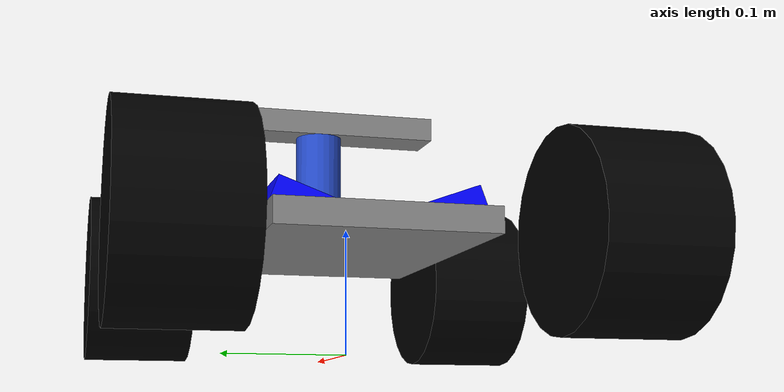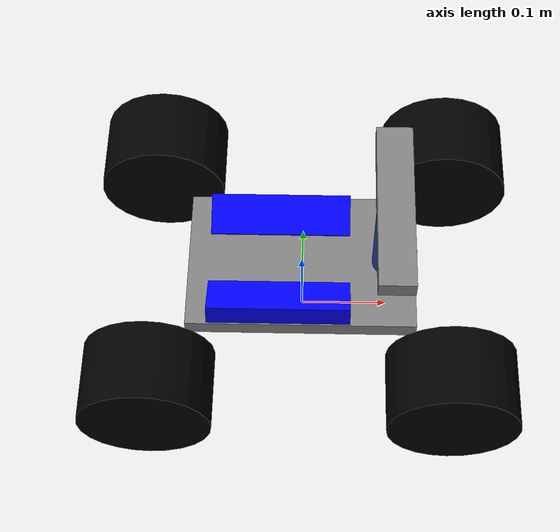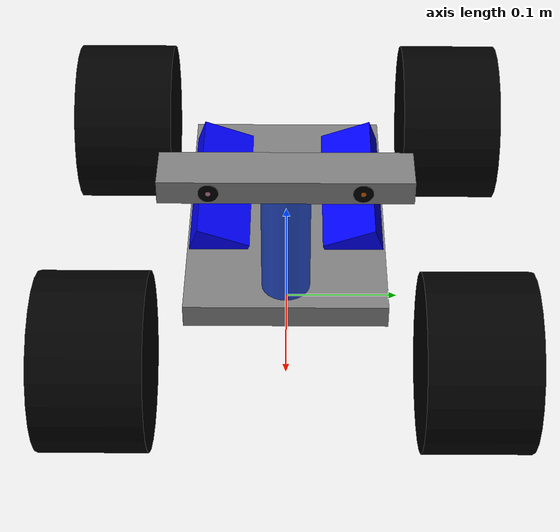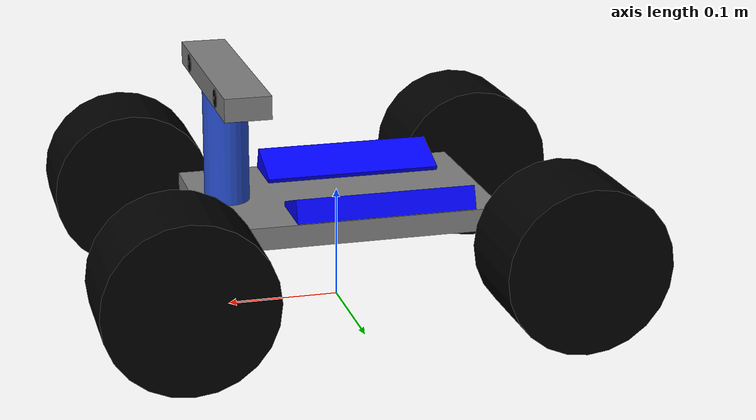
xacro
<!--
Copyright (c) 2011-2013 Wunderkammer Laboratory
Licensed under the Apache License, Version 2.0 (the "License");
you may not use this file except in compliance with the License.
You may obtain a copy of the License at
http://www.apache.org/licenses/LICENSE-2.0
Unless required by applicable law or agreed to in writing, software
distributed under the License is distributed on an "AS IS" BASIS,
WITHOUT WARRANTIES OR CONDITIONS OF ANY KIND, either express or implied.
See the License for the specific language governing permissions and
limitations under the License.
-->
<?xml version="1.0"?>

<robot name="em_3905" xmlns:xacro="http://www.ros.org/wiki/xacro">

  <!-- includes -->
  <xacro:include filename="$(find ackermann_vehicle_description)/urdf/stereo_camera.urdf.xacro" />

  <!-- Degree-to-radian conversions -->
  <xacro:property name="degrees_45" value="0.785398163"/>
  <xacro:property name="degrees_90" value="1.57079633"/>

  <!-- chassis_length is measured along the x axis, chassis_width
       along the y axis, and chassis_height along the z axis. -->
  <xacro:property name="chassis_length" value="0.258"/>
  <xacro:property name="chassis_width" value="0.168"/>
  <xacro:property name="chassis_height" value="0.02"/>
  <xacro:property name="chassis_mass" value="2.788"/>

  <xacro:property name="battery_x_offset" value="0.055"/>
  <xacro:property name="battery_dist" value="0.065"/>
  <xacro:property name="battery_comp_depth" value="0.02"/>
  <xacro:property name="battery_comp_angle" value="0.34906585"/>
  <xacro:property name="battery_length" value="0.16"/>
  <xacro:property name="battery_width" value="0.047"/>
  <xacro:property name="battery_height" value="0.024"/>
  <xacro:property name="battery_mass" value="0.5025"/>

  <xacro:property name="hub_dia" value="0.09652"/>
  <xacro:property name="tire_dia" value="0.14605"/>
  <xacro:property name="tire_width" value="0.0889"/>
  <xacro:property name="hex_hub_depth" value="0.01445"/>
  <xacro:property name="wheel_mass" value="0.29"/>

  <xacro:property name="wheelbase" value="0.335"/>
  <xacro:property name="hex_hub_dist" value="0.365"/>
  <xacro:property name="axle_length" value="0.03"/>
  <xacro:property name="wheel_travel" value="0.084"/>
  <xacro:property name="shock_z_offset" value="0.0655"/>

  <xacro:property name="shock_eff_limit" value="12.5106"/>
  <xacro:property name="shock_vel_limit" value="1000"/>

  <xacro:property name="axle_eff_limit" value="5.12766"/>
  <xacro:property name="axle_vel_limit" value="244.8696"/>

  <!-- These constants are used to simulate a Traxxas 2056 servo operated at
       6 V. servo_stall_torque is measured in N m. servo_no_load_speed is
       measured in rad/s. -->
  <xacro:property name="servo_stall_torque" value="0.5649"/>
  <xacro:property name="servo_no_load_speed" value="4.553"/>

  <!-- ctrl_period is gazebo_ros_control's control period. Unit: hertz. -->
  <xacro:property name="ctrl_period" value="0.01"/>

  <material name="battery_mat">
    <color rgba="0 0 1 1"/>
  </material>
  <material name="chassis_mat">
    <color rgba="0.5 0.5 0.5 1"/>
  </material>
  <material name="tire_mat">
    <color rgba="0 0 0 1"/>
  </material>

  <!-- Null inertial element. This is needed to make the model work with
       Gazebo. -->
  <xacro:macro name="null_inertial">
    <inertial>
      <mass value="0.001"/>
      <inertia ixx="0.001" ixy="0" ixz="0" iyy="0.001" iyz="0" izz="0.001"/>
    </inertial>
  </xacro:macro>

  <!-- Inertia of a solid cuboid. Width is measured along the x axis, depth
       along the y axis, and height along the z axis. -->
  <xacro:macro name="solid_cuboid_inertial"
               params="width depth height mass *origin">
    <inertial>
      <xacro:insert_block name="origin"/>
      <mass value="${mass}"/>
      <inertia ixx="${mass * (depth * depth + height * height) / 12}"
               ixy="0" ixz="0"
               iyy="${mass * (width * width + height * height) / 12}"
               iyz="0"
               izz="${mass * (width * width + depth * depth) / 12}"/>
    </inertial>
  </xacro:macro>

  <xacro:macro name="thick_walled_tube_inertial"
               params="inner_rad outer_rad height mass">
    <inertial>
      <mass value="${mass}"/>
      <inertia ixx="${(1 / 12) * mass * (3 * (inner_rad * inner_rad +
                    outer_rad * outer_rad) + height * height)}"
               ixy="0" ixz="0"
               iyy="${(1 / 12) * mass * (3 * (inner_rad * inner_rad +
                    outer_rad * outer_rad) + height * height)}"
               iyz="0"
               izz="${mass * (inner_rad * inner_rad +
                    outer_rad * outer_rad) / 2}"/>
    </inertial>
  </xacro:macro>

  <!-- Battery -->
  <xacro:macro name="battery" params="prefix reflect">
    <joint name="chassis_to_${prefix}_battery" type="fixed">
      <parent link="chassis"/>
      <child link="${prefix}_battery_offset"/>
      <origin xyz="${battery_x_offset - battery_length / 2}
                   ${reflect * battery_dist / 2}
                   0"
              rpy="${reflect * battery_comp_angle} 0 0"/>
    </joint>

    <link name="${prefix}_battery_offset">
      <xacro:null_inertial/>
    </link>

    <joint name="offset_to_${prefix}_battery" type="fixed">
      <parent link="${prefix}_battery_offset"/>
      <child link="${prefix}_battery"/>
      <origin xyz="0
                   ${reflect * battery_width / 2}
                   ${(battery_height / 2) - battery_comp_depth}"/>
    </joint>

    <link name="${prefix}_battery">
      <visual>
        <geometry>
          <box size="${battery_length} ${battery_width} ${battery_height}"/>
        </geometry>
        <material name="battery_mat"/>
      </visual>

      <collision>
        <geometry>
          <box size="${battery_length} ${battery_width} ${battery_height}"/>
        </geometry>
      </collision>

      <xacro:solid_cuboid_inertial
         width="${battery_length}" depth="${battery_width}"
         height="${battery_height}" mass="${battery_mass}">
        <origin/>
      </xacro:solid_cuboid_inertial>
    </link>

    <gazebo reference="${prefix}_battery">
      <material>Gazebo/Blue</material>
    </gazebo>
  </xacro:macro>

  <!-- Shock absorber -->
  <xacro:macro name="shock"
               params="lr_prefix fr_prefix lr_reflect fr_reflect child">
    <joint name="${lr_prefix}_${fr_prefix}_shock" type="prismatic">
      <parent link="chassis"/>
      <child link="${child}"/>

      <origin xyz="${fr_reflect * wheelbase / 2}
                   ${lr_reflect * ((hex_hub_dist / 2) - axle_length)}
                   ${(wheel_travel / 2) - shock_z_offset}"/>
      <axis xyz="0 0 -1"/>
      <limit lower="${-wheel_travel / 2}" upper="${wheel_travel / 2}"
             effort="${shock_eff_limit}" velocity="${shock_vel_limit}"/>
    </joint>
    <transmission name="${lr_prefix}_${fr_prefix}_shock_trans">
      <type>transmission_interface/SimpleTransmission</type>
      <joint name="${lr_prefix}_${fr_prefix}_shock">
        <hardwareInterface>hardware_interface/EffortJointInterface</hardwareInterface>
      </joint>
      <actuator name="${lr_prefix}_${fr_prefix}_shock_act">
        <mechanicalReduction>1</mechanicalReduction>
      </actuator>
    </transmission>
  </xacro:macro>

  <!-- The "wheel" macro defines an axle carrier, axle, and wheel. -->
  <xacro:macro name="wheel" params="lr_prefix fr_prefix lr_reflect">
    <link name="${lr_prefix}_${fr_prefix}_axle_carrier">
      <xacro:null_inertial/>
    </link>

    <!-- The left and right axles have the same axis so that identical
         rotation values cause the wheels to rotate in the same direction. -->
    <joint name="${lr_prefix}_${fr_prefix}_axle" type="continuous">
      <parent link="${lr_prefix}_${fr_prefix}_axle_carrier"/>
      <child link="${lr_prefix}_${fr_prefix}_wheel"/>
      <origin rpy="${degrees_90} 0 0"/>
      <axis xyz="0 0 -1"/>
      <limit effort="${axle_eff_limit}" velocity="${axle_vel_limit}"/>
    </joint>
    <transmission name="${lr_prefix}_${fr_prefix}_axle_trans">
      <type>transmission_interface/SimpleTransmission</type>
      <joint name="${lr_prefix}_${fr_prefix}_axle">
        <hardwareInterface>hardware_interface/EffortJointInterface</hardwareInterface>
      </joint>
      <actuator name="${lr_prefix}_${fr_prefix}_axle_act">
        <mechanicalReduction>1</mechanicalReduction>
      </actuator>
    </transmission>

    <link name="${lr_prefix}_${fr_prefix}_wheel">
      <visual>
        <origin xyz="0
                     ${lr_reflect * (axle_length - (tire_width /
                     2 - hex_hub_depth))}
                     0"/>
        <geometry>
          <cylinder radius="${tire_dia / 2}" length="${tire_width}"/>
        </geometry>
        <material name="tire_mat"/>
      </visual>

      <collision>
        <origin xyz="0
                     ${lr_reflect * (axle_length - (tire_width /
                     2 - hex_hub_depth))}
                     0"/>
        <geometry>
          <cylinder radius="${tire_dia / 2}" length="${tire_width}"/>
        </geometry>
      </collision>

      <xacro:thick_walled_tube_inertial
          inner_rad="${hub_dia / 2}" outer_rad="${tire_dia / 2}"
          height="${tire_width}" mass="${wheel_mass}"/>
    </link>

    <gazebo reference="${lr_prefix}_${fr_prefix}_wheel">
      <material>Gazebo/Black</material>
    </gazebo>
  </xacro:macro>

  <!-- Front wheel -->
  <xacro:macro name="front_wheel"
               params="lr_prefix fr_prefix lr_reflect fr_reflect">
    <xacro:shock lr_prefix="${lr_prefix}" fr_prefix="${fr_prefix}"
                 lr_reflect="${lr_reflect}" fr_reflect="${fr_reflect}"
                 child="${lr_prefix}_steering_link"/>

    <link name="${lr_prefix}_steering_link">
      <xacro:null_inertial/>
    </link>

    <joint name="${lr_prefix}_steering_joint" type="revolute">
      <parent link="${lr_prefix}_steering_link"/>
      <child link="${lr_prefix}_${fr_prefix}_axle_carrier"/>
      <axis xyz="0 0 1"/>
      <limit lower="${-degrees_45}" upper="${degrees_45}"
             effort="${servo_stall_torque}" velocity="${servo_no_load_speed}"/>
    </joint>
    <transmission name="${lr_prefix}_steering_trans">
      <type>transmission_interface/SimpleTransmission</type>
      <joint name="${lr_prefix}_steering_joint">
        <hardwareInterface>hardware_interface/EffortJointInterface</hardwareInterface>
      </joint>
      <actuator name="${lr_prefix}_steering_act">
        <mechanicalReduction>1</mechanicalReduction>
      </actuator>
    </transmission>

    <xacro:wheel lr_prefix="${lr_prefix}" fr_prefix="${fr_prefix}"
                 lr_reflect="${lr_reflect}"/>
  </xacro:macro>

  <!-- Rear wheel -->
  <xacro:macro name="rear_wheel"
               params="lr_prefix fr_prefix lr_reflect fr_reflect">
    <xacro:shock lr_prefix="${lr_prefix}" fr_prefix="${fr_prefix}"
                 lr_reflect="${lr_reflect}" fr_reflect="${fr_reflect}"
                 child="${lr_prefix}_${fr_prefix}_axle_carrier"/>
    <xacro:wheel lr_prefix="${lr_prefix}" fr_prefix="${fr_prefix}"
                 lr_reflect="${lr_reflect}"/>
  </xacro:macro>

  <!-- base_link must have geometry so that its axes can be displayed in
       rviz. -->
  <link name="base_link" />
  <link name="base_footprint" />

  <!-- Chassis -->
  <link name="chassis">
    <visual>
      <origin xyz="0 0 ${-chassis_height / 2}"/>
      <geometry>
        <box size="${chassis_length} ${chassis_width} ${chassis_height}"/>
      </geometry>
      <material name="chassis_mat"/>
    </visual>

    <collision>
      <origin xyz="0 0 ${-chassis_height / 2}"/>
      <geometry>
        <box size="${chassis_length} ${chassis_width} ${chassis_height}"/>
      </geometry>
    </collision>

    <xacro:solid_cuboid_inertial
        width="${chassis_length}" depth="${chassis_width}"
        height="${chassis_height}" mass="${chassis_mass}">
      <origin xyz="0 0 ${-chassis_height / 2}"/>
    </xacro:solid_cuboid_inertial>
  </link>
  <gazebo reference="chassis">
    <material>Gazebo/White</material>
  </gazebo>

  <joint name="base_link_to_chasis" type="fixed">
    <parent link="base_link"/>
    <child link="chassis"/>
  </joint>

  <joint name="base_footprint_to_link" type="fixed">
    <parent link="base_footprint"/>
    <child link="base_link"/>
    <origin xyz="0 0 0.1" />
  </joint>

  <!-- Batteries -->
  <xacro:battery prefix="left" reflect="1"/>
  <xacro:battery prefix="right" reflect="-1"/>

  <!-- Wheels -->
  <xacro:front_wheel lr_prefix="left" fr_prefix="front"
                     lr_reflect="1" fr_reflect="1"/>
  <xacro:front_wheel lr_prefix="right" fr_prefix="front"
                     lr_reflect="-1" fr_reflect="1"/>
  <xacro:rear_wheel lr_prefix="left" fr_prefix="rear"
                    lr_reflect="1" fr_reflect="-1"/>
  <xacro:rear_wheel lr_prefix="right" fr_prefix="rear"
                    lr_reflect="-1" fr_reflect="-1"/>

  <!-- camera mount -->
  <link name="camera_mount">
    <visual>
      <geometry>
        <cylinder radius="0.02" length="0.1" />
      </geometry>
      <material name="">
      </material>
    </visual>
  </link>
  <gazebo reference="camera_mount">
    <material>Gazebo/Blue</material>
  </gazebo>
  <joint name="camera_mount_joint" type="fixed">
    <parent link="chassis" />
    <child link="camera_mount" />
    <origin xyz="0.1 0.0 0.05" rpy="0 0 0" />
  </joint>

  <!-- camera -->
  <xacro:stereo_camera parent="camera_mount" origin="0 0 0.06" />

  <!-- gazebo plugins for control and odometry ground truth-->
  <gazebo>
    <plugin name="gazebo_ros_control" filename="libgazebo_ros_control.so" />
    <plugin name="gazebo_ros_p3d"     filename="libgazebo_ros_p3d.so">
      <frameName>map</frameName>
      <bodyName>base_footprint</bodyName>
      <topicName>odom_truth</topicName>
      <updateRate>30.0</updateRate>
    </plugin>
  </gazebo>

</robot>

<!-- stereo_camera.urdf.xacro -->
<robot xmlns:xacro="http://www.ros.org/wiki/xacro">

  <xacro:macro name="stereo_camera" params="parent origin">
    <!-- properties -->
    <xacro:property name="PI" value="3.141592654"/>

    <!-- camera links -->
    <link name="stereo_camera_center">
      <visual>
        <geometry>
          <box size="0.04 0.2 0.02"/>
        </geometry>
        <material name="camera_grey">
          <color rgba="0.5 0.5 0.5 1"/>
        </material>
      </visual>
    </link>
    <link name="stereo_left_camera_frame">
      <visual>
        <origin xyz="0.02 0 0" rpy="0 ${PI/2} 0" />
        <geometry>
          <cylinder radius="0.008" length="0.001"/>
        </geometry>
        <material name="black">
          <color rgba="0 0 0 1"/>
        </material>
      </visual>
    </link>
    <link name="stereo_right_camera_frame">
      <visual>
        <origin xyz="0.02 0 0" rpy="0 ${PI/2} 0" />
        <geometry>
          <cylinder radius="0.008" length="0.001"/>
        </geometry>
        <material name="black">
          <color rgba="0 0 0 1"/>
        </material>
      </visual>
    </link>
    <link name="stereo_left_camera_optical_frame">
      <visual>
        <origin xyz="0 0 0.021" rpy="0 0 0" />
        <geometry>
          <cylinder radius="0.002" length="0.0001"/>
        </geometry>
      </visual>
    </link>
    <link name="stereo_right_camera_optical_frame">
      <visual>
        <origin xyz="0 0 0.021" rpy="0 0 0" />
        <geometry>
          <cylinder radius="0.002" length="0.0001"/>
        </geometry>
      </visual>
    </link>

    <gazebo reference="stereo_camera_center">
      <material>Gazebo/LightGray</material>
    </gazebo>
    <gazebo reference="stereo_left_camera_frame">
      <material>Gazebo/Black</material>
    </gazebo>
    <gazebo reference="stereo_right_camera_frame">
      <material>Gazebo/Black</material>
    </gazebo>

    <!-- camera joints -->
    <joint name="stereo_camera_center_joint" type="fixed">
      <parent link="${parent}"/>
      <child link="stereo_camera_center"/>
      <origin xyz="${origin}" rpy="0 0 0" />
    </joint>
    <joint name="stereo_left_camera_joint" type="fixed">
      <parent link="stereo_camera_center"/>
      <child link="stereo_left_camera_frame"/>
      <origin xyz="0 0.06 0" rpy="0 0 0" />
    </joint>
    <joint name="stereo_left_camera_optical_joint" type="fixed">
      <origin xyz="0 0 0" rpy="${-PI/2} 0.0 ${-PI/2}"/>
      <parent link="stereo_left_camera_frame"/>
      <child link="stereo_left_camera_optical_frame"/>
    </joint>
    <joint name="stereo_right_camera_joint" type="fixed">
      <parent link="stereo_camera_center"/>
      <child link="stereo_right_camera_frame"/>
      <origin xyz="0 -0.06 0" rpy="0 0 0" />
    </joint>
    <joint name="stereo_right_camera_optical_joint" type="fixed">
      <origin xyz="0 0 0" rpy="${-PI/2} 0.0 ${-PI/2}"/>
      <parent link="stereo_right_camera_frame"/>
      <child link="stereo_right_camera_optical_frame"/>
    </joint>

    <!-- multicamera gazebo plugin -->
    <gazebo reference="stereo_camera_center">
      <sensor type="multicamera" name="stereo_camera">
        <update_rate>15.0</update_rate>
        <camera name="left">
          <pose>0 0.06 0 0 0 0</pose>
          <horizontal_fov>1.570796327</horizontal_fov>
          <image>
            <width>640</width>
            <height>480</height>
            <format>R8G8B8</format>
          </image>
          <clip>
            <near>0.05</near>
            <far>30</far>
          </clip>
          <distortion>
            <k1>-1.0</k1>
            <k2>0.48</k2>
            <k3>0.0</k3>
            <p1>-0.00028</p1>
            <p2>-0.00005</p2>
            <center>0.5 0.5</center>
          </distortion>
        </camera>
        <camera name="right">
          <pose>0 -0.06 0 0 0 0</pose>
          <horizontal_fov>1.570796327</horizontal_fov>
          <image>
            <width>640</width>
            <height>480</height>
            <format>R8G8B8</format>
          </image>
          <clip>
            <near>0.05</near>
            <far>30</far>
          </clip>
          <distortion>
            <k1>-1.0</k1>
            <k2>0.48</k2>
            <k3>0.0</k3>
            <p1>-0.00028</p1>
            <p2>-0.00005</p2>
            <center>0.5 0.5</center>
          </distortion>
        </camera>
        <plugin name="stereo_camera_controller" filename="libgazebo_ros_multicamera.so">
          <alwaysOn>true</alwaysOn>
          <updateRate>15.0</updateRate>
          <cameraName>stereo_camera</cameraName>
          <imageTopicName>image_raw</imageTopicName>
          <cameraInfoTopicName>camera_info_raw</cameraInfoTopicName>
          <frameName>/stereo_left_camera_optical_frame</frameName>
          <rightFrameName>/stereo_right_camera_optical_frame</rightFrameName>
          <hackBaseline>0.12</hackBaseline>
          <distortionK1>-0.0</distortionK1>
          <distortionK2>0.0</distortionK2>
          <distortionK3>0.0</distortionK3>
          <distortionT1>0.0</distortionT1>
          <distortionT2>0.0</distortionT2>
        </plugin>
      </sensor>
    </gazebo>

  </xacro:macro>

</robot>
